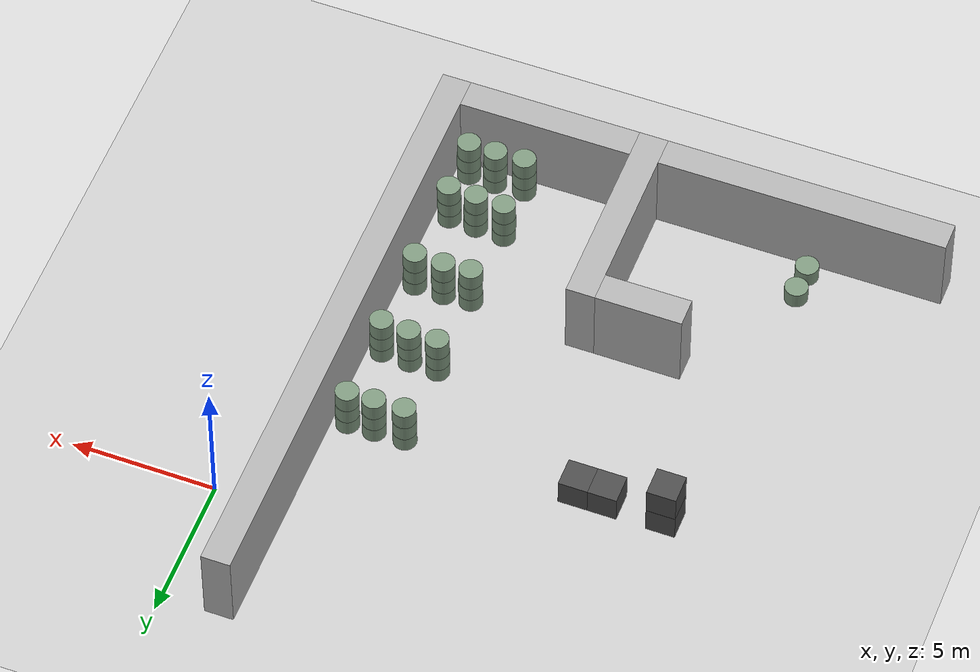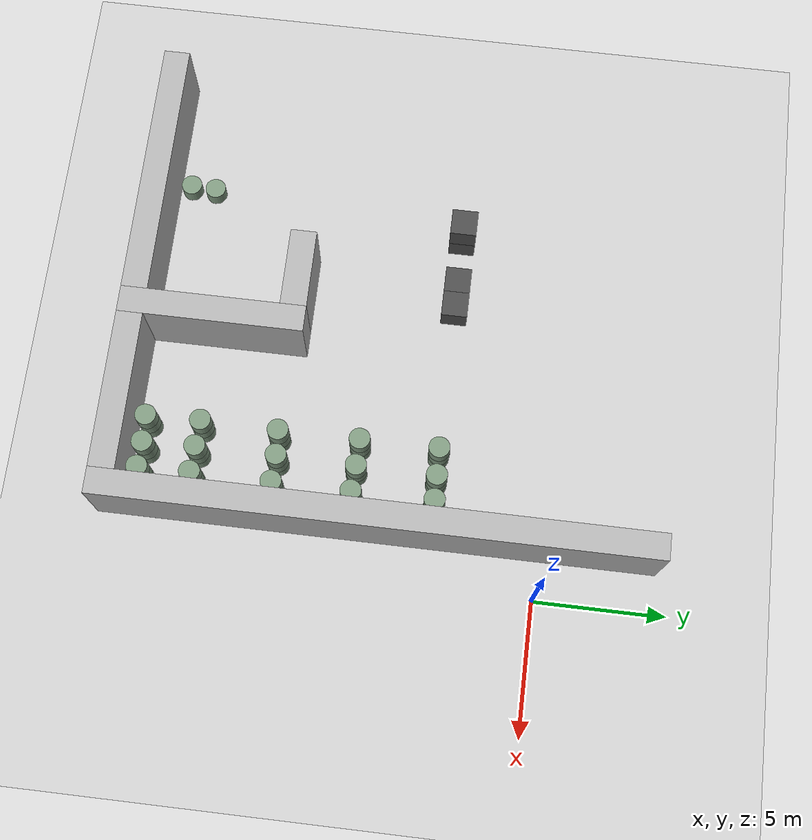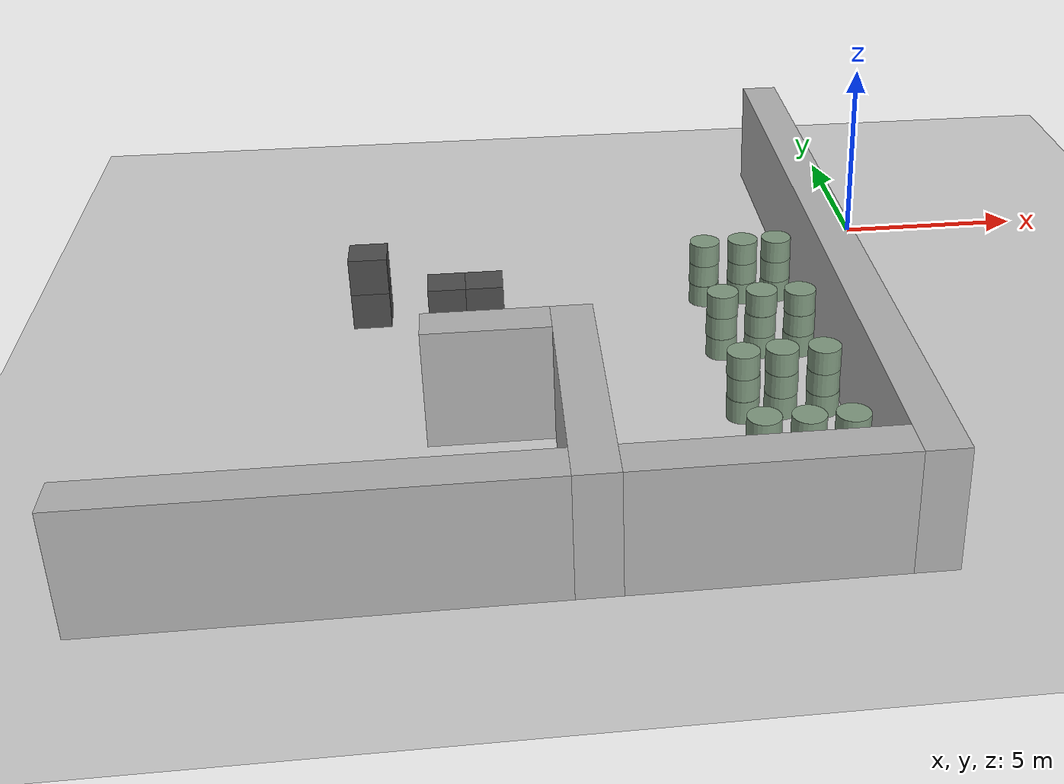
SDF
<sdf version="1.6">
 <world name="default">
  <include><uri>model://ground_plane</uri></include>
  <model name="wall_2">
   <pose>-9.0 -13.0 1.5 0 -0 0</pose>
   <static>True</static>
   <link name="link">
    <inertial>
     <mass>100</mass>
     <inertia>
      <ixx>0.166667</ixx>
      <ixy>0</ixy>
      <ixz>0</ixz>
      <iyy>0.166667</iyy>
      <iyz>0</iyz>
      <izz>0.166667</izz>
     </inertia>
    </inertial>
    <collision name="collision"><geometry><box><size>1.0 7.0 3.0</size></box></geometry></collision>
    <visual name="visual">
     <geometry><box><size>1.0 7.0 3.0</size></box></geometry>
     <material><ambient>0.7 0.7 0.7 1</ambient><diffuse>0.7 0.7 0.7 1</diffuse></material>
    </visual>
   </link>
  </model>
  <model name="wall_4">
   <pose>-2.0 -6.0 1.5 0 -0 0</pose>
   <static>True</static>
   <link name="link">
    <inertial>
     <mass>100</mass>
     <inertia>
      <ixx>0.166667</ixx>
      <ixy>0</ixy>
      <ixz>0</ixz>
      <iyy>0.166667</iyy>
      <iyz>0</iyz>
      <izz>0.166667</izz>
     </inertia>
    </inertial>
    <collision name="collision"><geometry><box><size>1.0 21.0 3.0</size></box></geometry></collision>
    <visual name="visual">
     <geometry><box><size>1.0 21.0 3.0</size></box></geometry>
     <material><ambient>0.7 0.7 0.7 1</ambient><diffuse>0.7 0.7 0.7 1</diffuse></material>
    </visual>
   </link>
  </model>
  <model name="wall_5">
   <pose>-14.5 -16.0 1.5 0 -0 0</pose>
   <static>True</static>
   <link name="link">
    <inertial>
     <mass>100</mass>
     <inertia>
      <ixx>0.166667</ixx>
      <ixy>0</ixy>
      <ixz>0</ixz>
      <iyy>0.166667</iyy>
      <iyz>0</iyz>
      <izz>0.166667</izz>
     </inertia>
    </inertial>
    <collision name="collision"><geometry><box><size>10.0 1.0 3.0</size></box></geometry></collision>
    <visual name="visual">
     <geometry><box><size>10.0 1.0 3.0</size></box></geometry>
     <material><ambient>0.7 0.7 0.7 1</ambient><diffuse>0.7 0.7 0.7 1</diffuse></material>
    </visual>
   </link>
  </model>
  <model name="wall_6">
   <pose>-5.5 -16.0 1.5 0 -0 0</pose>
   <static>True</static>
   <link name="link">
    <inertial>
     <mass>100</mass>
     <inertia>
      <ixx>0.166667</ixx>
      <ixy>0</ixy>
      <ixz>0</ixz>
      <iyy>0.166667</iyy>
      <iyz>0</iyz>
      <izz>0.166667</izz>
     </inertia>
    </inertial>
    <collision name="collision"><geometry><box><size>6.0 1.0 3.0</size></box></geometry></collision>
    <visual name="visual">
     <geometry><box><size>6.0 1.0 3.0</size></box></geometry>
     <material><ambient>0.7 0.7 0.7 1</ambient><diffuse>0.7 0.7 0.7 1</diffuse></material>
    </visual>
   </link>
  </model>
  <model name="wall_8">
   <pose>-11.0 -10.0 1.5 0 -0 0</pose>
   <static>True</static>
   <link name="link">
    <inertial>
     <mass>100</mass>
     <inertia>
      <ixx>0.166667</ixx>
      <ixy>0</ixy>
      <ixz>0</ixz>
      <iyy>0.166667</iyy>
      <iyz>0</iyz>
      <izz>0.166667</izz>
     </inertia>
    </inertial>
    <collision name="collision"><geometry><box><size>3.0 1.0 3.0</size></box></geometry></collision>
    <visual name="visual">
     <geometry><box><size>3.0 1.0 3.0</size></box></geometry>
     <material><ambient>0.7 0.7 0.7 1</ambient><diffuse>0.7 0.7 0.7 1</diffuse></material>
    </visual>
   </link>
  </model>
  <model name="unit_box_40">
   <pose>-14.0 -4.0 0.5 0 -0 0</pose>
   <static>True</static>
   <link name="link">
    <inertial>
     <mass>100</mass>
     <inertia>
      <ixx>0.166667</ixx>
      <ixy>0</ixy>
      <ixz>0</ixz>
      <iyy>0.166667</iyy>
      <iyz>0</iyz>
      <izz>0.166667</izz>
     </inertia>
    </inertial>
    <collision name="collision"><geometry><box><size>1.0 1.0 1.0</size></box></geometry></collision>
    <visual name="visual">
     <geometry><box><size>1.0 1.0 1.0</size></box></geometry>
     <material><ambient>0.3 0.3 0.3 1</ambient><diffuse>0.3 0.3 0.3 1</diffuse></material>
    </visual>
   </link>
  </model>
  <model name="unit_box_41">
   <pose>-14.0 -4.0 1.5 0 -0 0</pose>
   <static>True</static>
   <link name="link">
    <inertial>
     <mass>100</mass>
     <inertia>
      <ixx>0.166667</ixx>
      <ixy>0</ixy>
      <ixz>0</ixz>
      <iyy>0.166667</iyy>
      <iyz>0</iyz>
      <izz>0.166667</izz>
     </inertia>
    </inertial>
    <collision name="collision"><geometry><box><size>1.0 1.0 1.0</size></box></geometry></collision>
    <visual name="visual">
     <geometry><box><size>1.0 1.0 1.0</size></box></geometry>
     <material><ambient>0.3 0.3 0.3 1</ambient><diffuse>0.3 0.3 0.3 1</diffuse></material>
    </visual>
   </link>
  </model>
  <model name="unit_box_50">
   <pose>-12.0 -4.0 0.5 0 -0 0</pose>
   <static>True</static>
   <link name="link">
    <inertial>
     <mass>100</mass>
     <inertia>
      <ixx>0.166667</ixx>
      <ixy>0</ixy>
      <ixz>0</ixz>
      <iyy>0.166667</iyy>
      <iyz>0</iyz>
      <izz>0.166667</izz>
     </inertia>
    </inertial>
    <collision name="collision"><geometry><box><size>1.0 1.0 1.0</size></box></geometry></collision>
    <visual name="visual">
     <geometry><box><size>1.0 1.0 1.0</size></box></geometry>
     <material><ambient>0.3 0.3 0.3 1</ambient><diffuse>0.3 0.3 0.3 1</diffuse></material>
    </visual>
   </link>
  </model>
  <model name="unit_box_55">
   <pose>-11.0 -4.0 0.5 0 -0 0</pose>
   <static>True</static>
   <link name="link">
    <inertial>
     <mass>100</mass>
     <inertia>
      <ixx>0.166667</ixx>
      <ixy>0</ixy>
      <ixz>0</ixz>
      <iyy>0.166667</iyy>
      <iyz>0</iyz>
      <izz>0.166667</izz>
     </inertia>
    </inertial>
    <collision name="collision"><geometry><box><size>1.0 1.0 1.0</size></box></geometry></collision>
    <visual name="visual">
     <geometry><box><size>1.0 1.0 1.0</size></box></geometry>
     <material><ambient>0.3 0.3 0.3 1</ambient><diffuse>0.3 0.3 0.3 1</diffuse></material>
    </visual>
   </link>
  </model>
  <model name="unit_cylinder_39">
   <pose>-14.9876304925 -15.0127900981 0.3 0 -0 0</pose>
   <static>True</static>
   <link name="link">
    <inertial>
     <mass>100</mass>
     <inertia><ixx>0.145833</ixx><ixy>0</ixy><ixz>0</ixz><iyy>0.145833</iyy><iyz>0</iyz><izz>0.125</izz></inertia>
    </inertial>
    <collision name="collision">
     <geometry><cylinder><radius>0.4</radius><length>0.6</length></cylinder></geometry>
     <max_contacts>100</max_contacts>
    </collision>
    <visual name="visual">
     <geometry><cylinder><radius>0.4</radius><length>0.6</length></cylinder></geometry>
     <material><ambient>0.5 0.6 0.5 1</ambient><diffuse>0.5 0.6 0.5 1</diffuse></material>
    </visual>
   </link>
  </model>
  <model name="unit_cylinder_40">
   <pose>-14.9484855852 -14.0473796169 0.3 0 -0 0</pose>
   <static>True</static>
   <link name="link">
    <inertial>
     <mass>100</mass>
     <inertia><ixx>0.145833</ixx><ixy>0</ixy><ixz>0</ixz><iyy>0.145833</iyy><iyz>0</iyz><izz>0.125</izz></inertia>
    </inertial>
    <collision name="collision">
     <geometry><cylinder><radius>0.4</radius><length>0.6</length></cylinder></geometry>
     <max_contacts>100</max_contacts>
    </collision>
    <visual name="visual">
     <geometry><cylinder><radius>0.4</radius><length>0.6</length></cylinder></geometry>
     <material><ambient>0.5 0.6 0.5 1</ambient><diffuse>0.5 0.6 0.5 1</diffuse></material>
    </visual>
   </link>
  </model>
  <model name="unit_cylinder_54">
   <pose>-4.98177896427 -14.994784733 0.3 0 -0 0</pose>
   <static>True</static>
   <link name="link">
    <inertial>
     <mass>100</mass>
     <inertia><ixx>0.145833</ixx><ixy>0</ixy><ixz>0</ixz><iyy>0.145833</iyy><iyz>0</iyz><izz>0.125</izz></inertia>
    </inertial>
    <collision name="collision">
     <geometry><cylinder><radius>0.4</radius><length>0.6</length></cylinder></geometry>
     <max_contacts>100</max_contacts>
    </collision>
    <visual name="visual">
     <geometry><cylinder><radius>0.4</radius><length>0.6</length></cylinder></geometry>
     <material><ambient>0.5 0.6 0.5 1</ambient><diffuse>0.5 0.6 0.5 1</diffuse></material>
    </visual>
   </link>
  </model>
  <model name="unit_cylinder_55">
   <pose>-4.98045594166 -14.9920939056 0.9 0 -0 0</pose>
   <static>True</static>
   <link name="link">
    <inertial>
     <mass>100</mass>
     <inertia><ixx>0.145833</ixx><ixy>0</ixy><ixz>0</ixz><iyy>0.145833</iyy><iyz>0</iyz><izz>0.125</izz></inertia>
    </inertial>
    <collision name="collision">
     <geometry><cylinder><radius>0.4</radius><length>0.6</length></cylinder></geometry>
     <max_contacts>100</max_contacts>
    </collision>
    <visual name="visual">
     <geometry><cylinder><radius>0.4</radius><length>0.6</length></cylinder></geometry>
     <material><ambient>0.5 0.6 0.5 1</ambient><diffuse>0.5 0.6 0.5 1</diffuse></material>
    </visual>
   </link>
  </model>
  <model name="unit_cylinder_56">
   <pose>-4.9743986775 -15.0006165537 1.5 0 -0 0</pose>
   <static>True</static>
   <link name="link">
    <inertial>
     <mass>100</mass>
     <inertia><ixx>0.145833</ixx><ixy>0</ixy><ixz>0</ixz><iyy>0.145833</iyy><iyz>0</iyz><izz>0.125</izz></inertia>
    </inertial>
    <collision name="collision">
     <geometry><cylinder><radius>0.4</radius><length>0.6</length></cylinder></geometry>
     <max_contacts>100</max_contacts>
    </collision>
    <visual name="visual">
     <geometry><cylinder><radius>0.4</radius><length>0.6</length></cylinder></geometry>
     <material><ambient>0.5 0.6 0.5 1</ambient><diffuse>0.5 0.6 0.5 1</diffuse></material>
    </visual>
   </link>
  </model>
  <model name="unit_cylinder_57">
   <pose>-5.02119087671 -12.9589814476 0.3 0 -0 0</pose>
   <static>True</static>
   <link name="link">
    <inertial>
     <mass>100</mass>
     <inertia><ixx>0.145833</ixx><ixy>0</ixy><ixz>0</ixz><iyy>0.145833</iyy><iyz>0</iyz><izz>0.125</izz></inertia>
    </inertial>
    <collision name="collision">
     <geometry><cylinder><radius>0.4</radius><length>0.6</length></cylinder></geometry>
     <max_contacts>100</max_contacts>
    </collision>
    <visual name="visual">
     <geometry><cylinder><radius>0.4</radius><length>0.6</length></cylinder></geometry>
     <material><ambient>0.5 0.6 0.5 1</ambient><diffuse>0.5 0.6 0.5 1</diffuse></material>
    </visual>
   </link>
  </model>
  <model name="unit_cylinder_58">
   <pose>-5.03270737707 -12.9478775882 0.9 0 -0 0</pose>
   <static>True</static>
   <link name="link">
    <inertial>
     <mass>100</mass>
     <inertia><ixx>0.145833</ixx><ixy>0</ixy><ixz>0</ixz><iyy>0.145833</iyy><iyz>0</iyz><izz>0.125</izz></inertia>
    </inertial>
    <collision name="collision">
     <geometry><cylinder><radius>0.4</radius><length>0.6</length></cylinder></geometry>
     <max_contacts>100</max_contacts>
    </collision>
    <visual name="visual">
     <geometry><cylinder><radius>0.4</radius><length>0.6</length></cylinder></geometry>
     <material><ambient>0.5 0.6 0.5 1</ambient><diffuse>0.5 0.6 0.5 1</diffuse></material>
    </visual>
   </link>
  </model>
  <model name="unit_cylinder_59">
   <pose>-5.02260098405 -12.9470177871 1.5 0 -0 0</pose>
   <static>True</static>
   <link name="link">
    <inertial>
     <mass>100</mass>
     <inertia><ixx>0.145833</ixx><ixy>0</ixy><ixz>0</ixz><iyy>0.145833</iyy><iyz>0</iyz><izz>0.125</izz></inertia>
    </inertial>
    <collision name="collision">
     <geometry><cylinder><radius>0.4</radius><length>0.6</length></cylinder></geometry>
     <max_contacts>100</max_contacts>
    </collision>
    <visual name="visual">
     <geometry><cylinder><radius>0.4</radius><length>0.6</length></cylinder></geometry>
     <material><ambient>0.5 0.6 0.5 1</ambient><diffuse>0.5 0.6 0.5 1</diffuse></material>
    </visual>
   </link>
  </model>
  <model name="unit_cylinder_60">
   <pose>-4.9720346263 -10.039169177 0.3 0 -0 0</pose>
   <static>True</static>
   <link name="link">
    <inertial>
     <mass>100</mass>
     <inertia><ixx>0.145833</ixx><ixy>0</ixy><ixz>0</ixz><iyy>0.145833</iyy><iyz>0</iyz><izz>0.125</izz></inertia>
    </inertial>
    <collision name="collision">
     <geometry><cylinder><radius>0.4</radius><length>0.6</length></cylinder></geometry>
     <max_contacts>100</max_contacts>
    </collision>
    <visual name="visual">
     <geometry><cylinder><radius>0.4</radius><length>0.6</length></cylinder></geometry>
     <material><ambient>0.5 0.6 0.5 1</ambient><diffuse>0.5 0.6 0.5 1</diffuse></material>
    </visual>
   </link>
  </model>
  <model name="unit_cylinder_61">
   <pose>-4.9636415554 -10.0279783991 0.9 0 -0 0</pose>
   <static>True</static>
   <link name="link">
    <inertial>
     <mass>100</mass>
     <inertia><ixx>0.145833</ixx><ixy>0</ixy><ixz>0</ixz><iyy>0.145833</iyy><iyz>0</iyz><izz>0.125</izz></inertia>
    </inertial>
    <collision name="collision">
     <geometry><cylinder><radius>0.4</radius><length>0.6</length></cylinder></geometry>
     <max_contacts>100</max_contacts>
    </collision>
    <visual name="visual">
     <geometry><cylinder><radius>0.4</radius><length>0.6</length></cylinder></geometry>
     <material><ambient>0.5 0.6 0.5 1</ambient><diffuse>0.5 0.6 0.5 1</diffuse></material>
    </visual>
   </link>
  </model>
  <model name="unit_cylinder_62">
   <pose>-4.98026857993 -10.0275622847 1.5 0 -0 0</pose>
   <static>True</static>
   <link name="link">
    <inertial>
     <mass>100</mass>
     <inertia><ixx>0.145833</ixx><ixy>0</ixy><ixz>0</ixz><iyy>0.145833</iyy><iyz>0</iyz><izz>0.125</izz></inertia>
    </inertial>
    <collision name="collision">
     <geometry><cylinder><radius>0.4</radius><length>0.6</length></cylinder></geometry>
     <max_contacts>100</max_contacts>
    </collision>
    <visual name="visual">
     <geometry><cylinder><radius>0.4</radius><length>0.6</length></cylinder></geometry>
     <material><ambient>0.5 0.6 0.5 1</ambient><diffuse>0.5 0.6 0.5 1</diffuse></material>
    </visual>
   </link>
  </model>
  <model name="unit_cylinder_63">
   <pose>-4.99473556612 -6.96627481537 0.3 0 -0 0</pose>
   <static>True</static>
   <link name="link">
    <inertial>
     <mass>100</mass>
     <inertia><ixx>0.145833</ixx><ixy>0</ixy><ixz>0</ixz><iyy>0.145833</iyy><iyz>0</iyz><izz>0.125</izz></inertia>
    </inertial>
    <collision name="collision">
     <geometry><cylinder><radius>0.4</radius><length>0.6</length></cylinder></geometry>
     <max_contacts>100</max_contacts>
    </collision>
    <visual name="visual">
     <geometry><cylinder><radius>0.4</radius><length>0.6</length></cylinder></geometry>
     <material><ambient>0.5 0.6 0.5 1</ambient><diffuse>0.5 0.6 0.5 1</diffuse></material>
    </visual>
   </link>
  </model>
  <model name="unit_cylinder_64">
   <pose>-5.00331017891 -6.96381437125 0.9 0 -0 0</pose>
   <static>True</static>
   <link name="link">
    <inertial>
     <mass>100</mass>
     <inertia><ixx>0.145833</ixx><ixy>0</ixy><ixz>0</ixz><iyy>0.145833</iyy><iyz>0</iyz><izz>0.125</izz></inertia>
    </inertial>
    <collision name="collision">
     <geometry><cylinder><radius>0.4</radius><length>0.6</length></cylinder></geometry>
     <max_contacts>100</max_contacts>
    </collision>
    <visual name="visual">
     <geometry><cylinder><radius>0.4</radius><length>0.6</length></cylinder></geometry>
     <material><ambient>0.5 0.6 0.5 1</ambient><diffuse>0.5 0.6 0.5 1</diffuse></material>
    </visual>
   </link>
  </model>
  <model name="unit_cylinder_65">
   <pose>-4.99014259146 -6.9650697193 1.5 0 -0 0</pose>
   <static>True</static>
   <link name="link">
    <inertial>
     <mass>100</mass>
     <inertia><ixx>0.145833</ixx><ixy>0</ixy><ixz>0</ixz><iyy>0.145833</iyy><iyz>0</iyz><izz>0.125</izz></inertia>
    </inertial>
    <collision name="collision">
     <geometry><cylinder><radius>0.4</radius><length>0.6</length></cylinder></geometry>
     <max_contacts>100</max_contacts>
    </collision>
    <visual name="visual">
     <geometry><cylinder><radius>0.4</radius><length>0.6</length></cylinder></geometry>
     <material><ambient>0.5 0.6 0.5 1</ambient><diffuse>0.5 0.6 0.5 1</diffuse></material>
    </visual>
   </link>
  </model>
  <model name="unit_cylinder_66">
   <pose>-5.01241995618 -3.99520200681 0.3 0 -0 0</pose>
   <static>True</static>
   <link name="link">
    <inertial>
     <mass>100</mass>
     <inertia><ixx>0.145833</ixx><ixy>0</ixy><ixz>0</ixz><iyy>0.145833</iyy><iyz>0</iyz><izz>0.125</izz></inertia>
    </inertial>
    <collision name="collision">
     <geometry><cylinder><radius>0.4</radius><length>0.6</length></cylinder></geometry>
     <max_contacts>100</max_contacts>
    </collision>
    <visual name="visual">
     <geometry><cylinder><radius>0.4</radius><length>0.6</length></cylinder></geometry>
     <material><ambient>0.5 0.6 0.5 1</ambient><diffuse>0.5 0.6 0.5 1</diffuse></material>
    </visual>
   </link>
  </model>
  <model name="unit_cylinder_67">
   <pose>-5.01528047615 -3.98074207548 0.9 0 -0 0</pose>
   <static>True</static>
   <link name="link">
    <inertial>
     <mass>100</mass>
     <inertia><ixx>0.145833</ixx><ixy>0</ixy><ixz>0</ixz><iyy>0.145833</iyy><iyz>0</iyz><izz>0.125</izz></inertia>
    </inertial>
    <collision name="collision">
     <geometry><cylinder><radius>0.4</radius><length>0.6</length></cylinder></geometry>
     <max_contacts>100</max_contacts>
    </collision>
    <visual name="visual">
     <geometry><cylinder><radius>0.4</radius><length>0.6</length></cylinder></geometry>
     <material><ambient>0.5 0.6 0.5 1</ambient><diffuse>0.5 0.6 0.5 1</diffuse></material>
    </visual>
   </link>
  </model>
  <model name="unit_cylinder_68">
   <pose>-5.0052553902 -3.9951606383 1.5 0 -0 0</pose>
   <static>True</static>
   <link name="link">
    <inertial>
     <mass>100</mass>
     <inertia><ixx>0.145833</ixx><ixy>0</ixy><ixz>0</ixz><iyy>0.145833</iyy><iyz>0</iyz><izz>0.125</izz></inertia>
    </inertial>
    <collision name="collision">
     <geometry><cylinder><radius>0.4</radius><length>0.6</length></cylinder></geometry>
     <max_contacts>100</max_contacts>
    </collision>
    <visual name="visual">
     <geometry><cylinder><radius>0.4</radius><length>0.6</length></cylinder></geometry>
     <material><ambient>0.5 0.6 0.5 1</ambient><diffuse>0.5 0.6 0.5 1</diffuse></material>
    </visual>
   </link>
  </model>
  <model name="unit_cylinder_96">
   <pose>-3.94573990483 -14.9502960212 0.3 0 -0 0</pose>
   <static>True</static>
   <link name="link">
    <inertial>
     <mass>100</mass>
     <inertia><ixx>0.145833</ixx><ixy>0</ixy><ixz>0</ixz><iyy>0.145833</iyy><iyz>0</iyz><izz>0.125</izz></inertia>
    </inertial>
    <collision name="collision">
     <geometry><cylinder><radius>0.4</radius><length>0.6</length></cylinder></geometry>
     <max_contacts>100</max_contacts>
    </collision>
    <visual name="visual">
     <geometry><cylinder><radius>0.4</radius><length>0.6</length></cylinder></geometry>
     <material><ambient>0.5 0.6 0.5 1</ambient><diffuse>0.5 0.6 0.5 1</diffuse></material>
    </visual>
   </link>
  </model>
  <model name="unit_cylinder_97">
   <pose>-3.95424919607 -14.9584986037 0.9 0 -0 0</pose>
   <static>True</static>
   <link name="link">
    <inertial>
     <mass>100</mass>
     <inertia><ixx>0.145833</ixx><ixy>0</ixy><ixz>0</ixz><iyy>0.145833</iyy><iyz>0</iyz><izz>0.125</izz></inertia>
    </inertial>
    <collision name="collision">
     <geometry><cylinder><radius>0.4</radius><length>0.6</length></cylinder></geometry>
     <max_contacts>100</max_contacts>
    </collision>
    <visual name="visual">
     <geometry><cylinder><radius>0.4</radius><length>0.6</length></cylinder></geometry>
     <material><ambient>0.5 0.6 0.5 1</ambient><diffuse>0.5 0.6 0.5 1</diffuse></material>
    </visual>
   </link>
  </model>
  <model name="unit_cylinder_98">
   <pose>-3.95760243311 -14.9622802897 1.5 0 -0 0</pose>
   <static>True</static>
   <link name="link">
    <inertial>
     <mass>100</mass>
     <inertia><ixx>0.145833</ixx><ixy>0</ixy><ixz>0</ixz><iyy>0.145833</iyy><iyz>0</iyz><izz>0.125</izz></inertia>
    </inertial>
    <collision name="collision">
     <geometry><cylinder><radius>0.4</radius><length>0.6</length></cylinder></geometry>
     <max_contacts>100</max_contacts>
    </collision>
    <visual name="visual">
     <geometry><cylinder><radius>0.4</radius><length>0.6</length></cylinder></geometry>
     <material><ambient>0.5 0.6 0.5 1</ambient><diffuse>0.5 0.6 0.5 1</diffuse></material>
    </visual>
   </link>
  </model>
  <model name="unit_cylinder_99">
   <pose>-4.00910950379 -12.9876102616 0.3 0 -0 0</pose>
   <static>True</static>
   <link name="link">
    <inertial>
     <mass>100</mass>
     <inertia><ixx>0.145833</ixx><ixy>0</ixy><ixz>0</ixz><iyy>0.145833</iyy><iyz>0</iyz><izz>0.125</izz></inertia>
    </inertial>
    <collision name="collision">
     <geometry><cylinder><radius>0.4</radius><length>0.6</length></cylinder></geometry>
     <max_contacts>100</max_contacts>
    </collision>
    <visual name="visual">
     <geometry><cylinder><radius>0.4</radius><length>0.6</length></cylinder></geometry>
     <material><ambient>0.5 0.6 0.5 1</ambient><diffuse>0.5 0.6 0.5 1</diffuse></material>
    </visual>
   </link>
  </model>
  <model name="unit_cylinder_100">
   <pose>-4.01389710108 -12.9851607125 0.9 0 -0 0</pose>
   <static>True</static>
   <link name="link">
    <inertial>
     <mass>100</mass>
     <inertia><ixx>0.145833</ixx><ixy>0</ixy><ixz>0</ixz><iyy>0.145833</iyy><iyz>0</iyz><izz>0.125</izz></inertia>
    </inertial>
    <collision name="collision">
     <geometry><cylinder><radius>0.4</radius><length>0.6</length></cylinder></geometry>
     <max_contacts>100</max_contacts>
    </collision>
    <visual name="visual">
     <geometry><cylinder><radius>0.4</radius><length>0.6</length></cylinder></geometry>
     <material><ambient>0.5 0.6 0.5 1</ambient><diffuse>0.5 0.6 0.5 1</diffuse></material>
    </visual>
   </link>
  </model>
  <model name="unit_cylinder_101">
   <pose>-4.02326789173 -12.9990078001 1.5 0 -0 0</pose>
   <static>True</static>
   <link name="link">
    <inertial>
     <mass>100</mass>
     <inertia><ixx>0.145833</ixx><ixy>0</ixy><ixz>0</ixz><iyy>0.145833</iyy><iyz>0</iyz><izz>0.125</izz></inertia>
    </inertial>
    <collision name="collision">
     <geometry><cylinder><radius>0.4</radius><length>0.6</length></cylinder></geometry>
     <max_contacts>100</max_contacts>
    </collision>
    <visual name="visual">
     <geometry><cylinder><radius>0.4</radius><length>0.6</length></cylinder></geometry>
     <material><ambient>0.5 0.6 0.5 1</ambient><diffuse>0.5 0.6 0.5 1</diffuse></material>
    </visual>
   </link>
  </model>
  <model name="unit_cylinder_102">
   <pose>-4.03596652385 -9.96929895706 0.3 0 -0 0</pose>
   <static>True</static>
   <link name="link">
    <inertial>
     <mass>100</mass>
     <inertia><ixx>0.145833</ixx><ixy>0</ixy><ixz>0</ixz><iyy>0.145833</iyy><iyz>0</iyz><izz>0.125</izz></inertia>
    </inertial>
    <collision name="collision">
     <geometry><cylinder><radius>0.4</radius><length>0.6</length></cylinder></geometry>
     <max_contacts>100</max_contacts>
    </collision>
    <visual name="visual">
     <geometry><cylinder><radius>0.4</radius><length>0.6</length></cylinder></geometry>
     <material><ambient>0.5 0.6 0.5 1</ambient><diffuse>0.5 0.6 0.5 1</diffuse></material>
    </visual>
   </link>
  </model>
  <model name="unit_cylinder_103">
   <pose>-4.02916020285 -9.97358079566 0.9 0 -0 0</pose>
   <static>True</static>
   <link name="link">
    <inertial>
     <mass>100</mass>
     <inertia><ixx>0.145833</ixx><ixy>0</ixy><ixz>0</ixz><iyy>0.145833</iyy><iyz>0</iyz><izz>0.125</izz></inertia>
    </inertial>
    <collision name="collision">
     <geometry><cylinder><radius>0.4</radius><length>0.6</length></cylinder></geometry>
     <max_contacts>100</max_contacts>
    </collision>
    <visual name="visual">
     <geometry><cylinder><radius>0.4</radius><length>0.6</length></cylinder></geometry>
     <material><ambient>0.5 0.6 0.5 1</ambient><diffuse>0.5 0.6 0.5 1</diffuse></material>
    </visual>
   </link>
  </model>
  <model name="unit_cylinder_104">
   <pose>-4.03643661033 -9.96890784991 1.5 0 -0 0</pose>
   <static>True</static>
   <link name="link">
    <inertial>
     <mass>100</mass>
     <inertia><ixx>0.145833</ixx><ixy>0</ixy><ixz>0</ixz><iyy>0.145833</iyy><iyz>0</iyz><izz>0.125</izz></inertia>
    </inertial>
    <collision name="collision">
     <geometry><cylinder><radius>0.4</radius><length>0.6</length></cylinder></geometry>
     <max_contacts>100</max_contacts>
    </collision>
    <visual name="visual">
     <geometry><cylinder><radius>0.4</radius><length>0.6</length></cylinder></geometry>
     <material><ambient>0.5 0.6 0.5 1</ambient><diffuse>0.5 0.6 0.5 1</diffuse></material>
    </visual>
   </link>
  </model>
  <model name="unit_cylinder_105">
   <pose>-4.00353094867 -6.99411063884 0.3 0 -0 0</pose>
   <static>True</static>
   <link name="link">
    <inertial>
     <mass>100</mass>
     <inertia><ixx>0.145833</ixx><ixy>0</ixy><ixz>0</ixz><iyy>0.145833</iyy><iyz>0</iyz><izz>0.125</izz></inertia>
    </inertial>
    <collision name="collision">
     <geometry><cylinder><radius>0.4</radius><length>0.6</length></cylinder></geometry>
     <max_contacts>100</max_contacts>
    </collision>
    <visual name="visual">
     <geometry><cylinder><radius>0.4</radius><length>0.6</length></cylinder></geometry>
     <material><ambient>0.5 0.6 0.5 1</ambient><diffuse>0.5 0.6 0.5 1</diffuse></material>
    </visual>
   </link>
  </model>
  <model name="unit_cylinder_106">
   <pose>-4.00190803067 -6.99611499419 0.9 0 -0 0</pose>
   <static>True</static>
   <link name="link">
    <inertial>
     <mass>100</mass>
     <inertia><ixx>0.145833</ixx><ixy>0</ixy><ixz>0</ixz><iyy>0.145833</iyy><iyz>0</iyz><izz>0.125</izz></inertia>
    </inertial>
    <collision name="collision">
     <geometry><cylinder><radius>0.4</radius><length>0.6</length></cylinder></geometry>
     <max_contacts>100</max_contacts>
    </collision>
    <visual name="visual">
     <geometry><cylinder><radius>0.4</radius><length>0.6</length></cylinder></geometry>
     <material><ambient>0.5 0.6 0.5 1</ambient><diffuse>0.5 0.6 0.5 1</diffuse></material>
    </visual>
   </link>
  </model>
  <model name="unit_cylinder_107">
   <pose>-3.98493196899 -6.98021336553 1.5 0 -0 0</pose>
   <static>True</static>
   <link name="link">
    <inertial>
     <mass>100</mass>
     <inertia><ixx>0.145833</ixx><ixy>0</ixy><ixz>0</ixz><iyy>0.145833</iyy><iyz>0</iyz><izz>0.125</izz></inertia>
    </inertial>
    <collision name="collision">
     <geometry><cylinder><radius>0.4</radius><length>0.6</length></cylinder></geometry>
     <max_contacts>100</max_contacts>
    </collision>
    <visual name="visual">
     <geometry><cylinder><radius>0.4</radius><length>0.6</length></cylinder></geometry>
     <material><ambient>0.5 0.6 0.5 1</ambient><diffuse>0.5 0.6 0.5 1</diffuse></material>
    </visual>
   </link>
  </model>
  <model name="unit_cylinder_108">
   <pose>-3.95656681946 -3.96793701186 0.3 0 -0 0</pose>
   <static>True</static>
   <link name="link">
    <inertial>
     <mass>100</mass>
     <inertia><ixx>0.145833</ixx><ixy>0</ixy><ixz>0</ixz><iyy>0.145833</iyy><iyz>0</iyz><izz>0.125</izz></inertia>
    </inertial>
    <collision name="collision">
     <geometry><cylinder><radius>0.4</radius><length>0.6</length></cylinder></geometry>
     <max_contacts>100</max_contacts>
    </collision>
    <visual name="visual">
     <geometry><cylinder><radius>0.4</radius><length>0.6</length></cylinder></geometry>
     <material><ambient>0.5 0.6 0.5 1</ambient><diffuse>0.5 0.6 0.5 1</diffuse></material>
    </visual>
   </link>
  </model>
  <model name="unit_cylinder_109">
   <pose>-3.95598454523 -3.9680762901 0.9 0 -0 0</pose>
   <static>True</static>
   <link name="link">
    <inertial>
     <mass>100</mass>
     <inertia><ixx>0.145833</ixx><ixy>0</ixy><ixz>0</ixz><iyy>0.145833</iyy><iyz>0</iyz><izz>0.125</izz></inertia>
    </inertial>
    <collision name="collision">
     <geometry><cylinder><radius>0.4</radius><length>0.6</length></cylinder></geometry>
     <max_contacts>100</max_contacts>
    </collision>
    <visual name="visual">
     <geometry><cylinder><radius>0.4</radius><length>0.6</length></cylinder></geometry>
     <material><ambient>0.5 0.6 0.5 1</ambient><diffuse>0.5 0.6 0.5 1</diffuse></material>
    </visual>
   </link>
  </model>
  <model name="unit_cylinder_110">
   <pose>-3.96099963245 -3.97491533006 1.5 0 -0 0</pose>
   <static>True</static>
   <link name="link">
    <inertial>
     <mass>100</mass>
     <inertia><ixx>0.145833</ixx><ixy>0</ixy><ixz>0</ixz><iyy>0.145833</iyy><iyz>0</iyz><izz>0.125</izz></inertia>
    </inertial>
    <collision name="collision">
     <geometry><cylinder><radius>0.4</radius><length>0.6</length></cylinder></geometry>
     <max_contacts>100</max_contacts>
    </collision>
    <visual name="visual">
     <geometry><cylinder><radius>0.4</radius><length>0.6</length></cylinder></geometry>
     <material><ambient>0.5 0.6 0.5 1</ambient><diffuse>0.5 0.6 0.5 1</diffuse></material>
    </visual>
   </link>
  </model>
  <model name="unit_cylinder_138">
   <pose>-3.00129710848 -15.0006177684 0.3 0 -0 0</pose>
   <static>True</static>
   <link name="link">
    <inertial>
     <mass>100</mass>
     <inertia><ixx>0.145833</ixx><ixy>0</ixy><ixz>0</ixz><iyy>0.145833</iyy><iyz>0</iyz><izz>0.125</izz></inertia>
    </inertial>
    <collision name="collision">
     <geometry><cylinder><radius>0.4</radius><length>0.6</length></cylinder></geometry>
     <max_contacts>100</max_contacts>
    </collision>
    <visual name="visual">
     <geometry><cylinder><radius>0.4</radius><length>0.6</length></cylinder></geometry>
     <material><ambient>0.5 0.6 0.5 1</ambient><diffuse>0.5 0.6 0.5 1</diffuse></material>
    </visual>
   </link>
  </model>
  <model name="unit_cylinder_139">
   <pose>-2.98878697835 -14.9986963216 0.9 0 -0 0</pose>
   <static>True</static>
   <link name="link">
    <inertial>
     <mass>100</mass>
     <inertia><ixx>0.145833</ixx><ixy>0</ixy><ixz>0</ixz><iyy>0.145833</iyy><iyz>0</iyz><izz>0.125</izz></inertia>
    </inertial>
    <collision name="collision">
     <geometry><cylinder><radius>0.4</radius><length>0.6</length></cylinder></geometry>
     <max_contacts>100</max_contacts>
    </collision>
    <visual name="visual">
     <geometry><cylinder><radius>0.4</radius><length>0.6</length></cylinder></geometry>
     <material><ambient>0.5 0.6 0.5 1</ambient><diffuse>0.5 0.6 0.5 1</diffuse></material>
    </visual>
   </link>
  </model>
  <model name="unit_cylinder_140">
   <pose>-3.00127820892 -14.9956335381 1.5 0 -0 0</pose>
   <static>True</static>
   <link name="link">
    <inertial>
     <mass>100</mass>
     <inertia><ixx>0.145833</ixx><ixy>0</ixy><ixz>0</ixz><iyy>0.145833</iyy><iyz>0</iyz><izz>0.125</izz></inertia>
    </inertial>
    <collision name="collision">
     <geometry><cylinder><radius>0.4</radius><length>0.6</length></cylinder></geometry>
     <max_contacts>100</max_contacts>
    </collision>
    <visual name="visual">
     <geometry><cylinder><radius>0.4</radius><length>0.6</length></cylinder></geometry>
     <material><ambient>0.5 0.6 0.5 1</ambient><diffuse>0.5 0.6 0.5 1</diffuse></material>
    </visual>
   </link>
  </model>
  <model name="unit_cylinder_141">
   <pose>-3.05007369162 -13.0421614589 0.3 0 -0 0</pose>
   <static>True</static>
   <link name="link">
    <inertial>
     <mass>100</mass>
     <inertia><ixx>0.145833</ixx><ixy>0</ixy><ixz>0</ixz><iyy>0.145833</iyy><iyz>0</iyz><izz>0.125</izz></inertia>
    </inertial>
    <collision name="collision">
     <geometry><cylinder><radius>0.4</radius><length>0.6</length></cylinder></geometry>
     <max_contacts>100</max_contacts>
    </collision>
    <visual name="visual">
     <geometry><cylinder><radius>0.4</radius><length>0.6</length></cylinder></geometry>
     <material><ambient>0.5 0.6 0.5 1</ambient><diffuse>0.5 0.6 0.5 1</diffuse></material>
    </visual>
   </link>
  </model>
  <model name="unit_cylinder_142">
   <pose>-3.04836171197 -13.0408715574 0.9 0 -0 0</pose>
   <static>True</static>
   <link name="link">
    <inertial>
     <mass>100</mass>
     <inertia><ixx>0.145833</ixx><ixy>0</ixy><ixz>0</ixz><iyy>0.145833</iyy><iyz>0</iyz><izz>0.125</izz></inertia>
    </inertial>
    <collision name="collision">
     <geometry><cylinder><radius>0.4</radius><length>0.6</length></cylinder></geometry>
     <max_contacts>100</max_contacts>
    </collision>
    <visual name="visual">
     <geometry><cylinder><radius>0.4</radius><length>0.6</length></cylinder></geometry>
     <material><ambient>0.5 0.6 0.5 1</ambient><diffuse>0.5 0.6 0.5 1</diffuse></material>
    </visual>
   </link>
  </model>
  <model name="unit_cylinder_143">
   <pose>-3.03438147567 -13.0378461806 1.5 0 -0 0</pose>
   <static>True</static>
   <link name="link">
    <inertial>
     <mass>100</mass>
     <inertia><ixx>0.145833</ixx><ixy>0</ixy><ixz>0</ixz><iyy>0.145833</iyy><iyz>0</iyz><izz>0.125</izz></inertia>
    </inertial>
    <collision name="collision">
     <geometry><cylinder><radius>0.4</radius><length>0.6</length></cylinder></geometry>
     <max_contacts>100</max_contacts>
    </collision>
    <visual name="visual">
     <geometry><cylinder><radius>0.4</radius><length>0.6</length></cylinder></geometry>
     <material><ambient>0.5 0.6 0.5 1</ambient><diffuse>0.5 0.6 0.5 1</diffuse></material>
    </visual>
   </link>
  </model>
  <model name="unit_cylinder_144">
   <pose>-3.0015525951 -9.99919089117 0.3 0 -0 0</pose>
   <static>True</static>
   <link name="link">
    <inertial>
     <mass>100</mass>
     <inertia><ixx>0.145833</ixx><ixy>0</ixy><ixz>0</ixz><iyy>0.145833</iyy><iyz>0</iyz><izz>0.125</izz></inertia>
    </inertial>
    <collision name="collision">
     <geometry><cylinder><radius>0.4</radius><length>0.6</length></cylinder></geometry>
     <max_contacts>100</max_contacts>
    </collision>
    <visual name="visual">
     <geometry><cylinder><radius>0.4</radius><length>0.6</length></cylinder></geometry>
     <material><ambient>0.5 0.6 0.5 1</ambient><diffuse>0.5 0.6 0.5 1</diffuse></material>
    </visual>
   </link>
  </model>
  <model name="unit_cylinder_145">
   <pose>-3.0169861753 -10.0020722996 0.9 0 -0 0</pose>
   <static>True</static>
   <link name="link">
    <inertial>
     <mass>100</mass>
     <inertia><ixx>0.145833</ixx><ixy>0</ixy><ixz>0</ixz><iyy>0.145833</iyy><iyz>0</iyz><izz>0.125</izz></inertia>
    </inertial>
    <collision name="collision">
     <geometry><cylinder><radius>0.4</radius><length>0.6</length></cylinder></geometry>
     <max_contacts>100</max_contacts>
    </collision>
    <visual name="visual">
     <geometry><cylinder><radius>0.4</radius><length>0.6</length></cylinder></geometry>
     <material><ambient>0.5 0.6 0.5 1</ambient><diffuse>0.5 0.6 0.5 1</diffuse></material>
    </visual>
   </link>
  </model>
  <model name="unit_cylinder_146">
   <pose>-3.0129168767 -10.0066521545 1.5 0 -0 0</pose>
   <static>True</static>
   <link name="link">
    <inertial>
     <mass>100</mass>
     <inertia><ixx>0.145833</ixx><ixy>0</ixy><ixz>0</ixz><iyy>0.145833</iyy><iyz>0</iyz><izz>0.125</izz></inertia>
    </inertial>
    <collision name="collision">
     <geometry><cylinder><radius>0.4</radius><length>0.6</length></cylinder></geometry>
     <max_contacts>100</max_contacts>
    </collision>
    <visual name="visual">
     <geometry><cylinder><radius>0.4</radius><length>0.6</length></cylinder></geometry>
     <material><ambient>0.5 0.6 0.5 1</ambient><diffuse>0.5 0.6 0.5 1</diffuse></material>
    </visual>
   </link>
  </model>
  <model name="unit_cylinder_147">
   <pose>-2.99938388727 -7.04344346517 0.3 0 -0 0</pose>
   <static>True</static>
   <link name="link">
    <inertial>
     <mass>100</mass>
     <inertia><ixx>0.145833</ixx><ixy>0</ixy><ixz>0</ixz><iyy>0.145833</iyy><iyz>0</iyz><izz>0.125</izz></inertia>
    </inertial>
    <collision name="collision">
     <geometry><cylinder><radius>0.4</radius><length>0.6</length></cylinder></geometry>
     <max_contacts>100</max_contacts>
    </collision>
    <visual name="visual">
     <geometry><cylinder><radius>0.4</radius><length>0.6</length></cylinder></geometry>
     <material><ambient>0.5 0.6 0.5 1</ambient><diffuse>0.5 0.6 0.5 1</diffuse></material>
    </visual>
   </link>
  </model>
  <model name="unit_cylinder_148">
   <pose>-2.99381120217 -7.05417457449 0.9 0 -0 0</pose>
   <static>True</static>
   <link name="link">
    <inertial>
     <mass>100</mass>
     <inertia><ixx>0.145833</ixx><ixy>0</ixy><ixz>0</ixz><iyy>0.145833</iyy><iyz>0</iyz><izz>0.125</izz></inertia>
    </inertial>
    <collision name="collision">
     <geometry><cylinder><radius>0.4</radius><length>0.6</length></cylinder></geometry>
     <max_contacts>100</max_contacts>
    </collision>
    <visual name="visual">
     <geometry><cylinder><radius>0.4</radius><length>0.6</length></cylinder></geometry>
     <material><ambient>0.5 0.6 0.5 1</ambient><diffuse>0.5 0.6 0.5 1</diffuse></material>
    </visual>
   </link>
  </model>
  <model name="unit_cylinder_149">
   <pose>-3.00415241786 -7.05098337284 1.5 0 -0 0</pose>
   <static>True</static>
   <link name="link">
    <inertial>
     <mass>100</mass>
     <inertia><ixx>0.145833</ixx><ixy>0</ixy><ixz>0</ixz><iyy>0.145833</iyy><iyz>0</iyz><izz>0.125</izz></inertia>
    </inertial>
    <collision name="collision">
     <geometry><cylinder><radius>0.4</radius><length>0.6</length></cylinder></geometry>
     <max_contacts>100</max_contacts>
    </collision>
    <visual name="visual">
     <geometry><cylinder><radius>0.4</radius><length>0.6</length></cylinder></geometry>
     <material><ambient>0.5 0.6 0.5 1</ambient><diffuse>0.5 0.6 0.5 1</diffuse></material>
    </visual>
   </link>
  </model>
  <model name="unit_cylinder_150">
   <pose>-3.02748054776 -3.94745814392 0.3 0 -0 0</pose>
   <static>True</static>
   <link name="link">
    <inertial>
     <mass>100</mass>
     <inertia><ixx>0.145833</ixx><ixy>0</ixy><ixz>0</ixz><iyy>0.145833</iyy><iyz>0</iyz><izz>0.125</izz></inertia>
    </inertial>
    <collision name="collision">
     <geometry><cylinder><radius>0.4</radius><length>0.6</length></cylinder></geometry>
     <max_contacts>100</max_contacts>
    </collision>
    <visual name="visual">
     <geometry><cylinder><radius>0.4</radius><length>0.6</length></cylinder></geometry>
     <material><ambient>0.5 0.6 0.5 1</ambient><diffuse>0.5 0.6 0.5 1</diffuse></material>
    </visual>
   </link>
  </model>
  <model name="unit_cylinder_151">
   <pose>-3.03062268912 -3.95190788146 0.9 0 -0 0</pose>
   <static>True</static>
   <link name="link">
    <inertial>
     <mass>100</mass>
     <inertia><ixx>0.145833</ixx><ixy>0</ixy><ixz>0</ixz><iyy>0.145833</iyy><iyz>0</iyz><izz>0.125</izz></inertia>
    </inertial>
    <collision name="collision">
     <geometry><cylinder><radius>0.4</radius><length>0.6</length></cylinder></geometry>
     <max_contacts>100</max_contacts>
    </collision>
    <visual name="visual">
     <geometry><cylinder><radius>0.4</radius><length>0.6</length></cylinder></geometry>
     <material><ambient>0.5 0.6 0.5 1</ambient><diffuse>0.5 0.6 0.5 1</diffuse></material>
    </visual>
   </link>
  </model>
  <model name="unit_cylinder_152">
   <pose>-3.03474229295 -3.95924207332 1.5 0 -0 0</pose>
   <static>True</static>
   <link name="link">
    <inertial>
     <mass>100</mass>
     <inertia><ixx>0.145833</ixx><ixy>0</ixy><ixz>0</ixz><iyy>0.145833</iyy><iyz>0</iyz><izz>0.125</izz></inertia>
    </inertial>
    <collision name="collision">
     <geometry><cylinder><radius>0.4</radius><length>0.6</length></cylinder></geometry>
     <max_contacts>100</max_contacts>
    </collision>
    <visual name="visual">
     <geometry><cylinder><radius>0.4</radius><length>0.6</length></cylinder></geometry>
     <material><ambient>0.5 0.6 0.5 1</ambient><diffuse>0.5 0.6 0.5 1</diffuse></material>
    </visual>
   </link>
  </model>
 </world>
</sdf>
